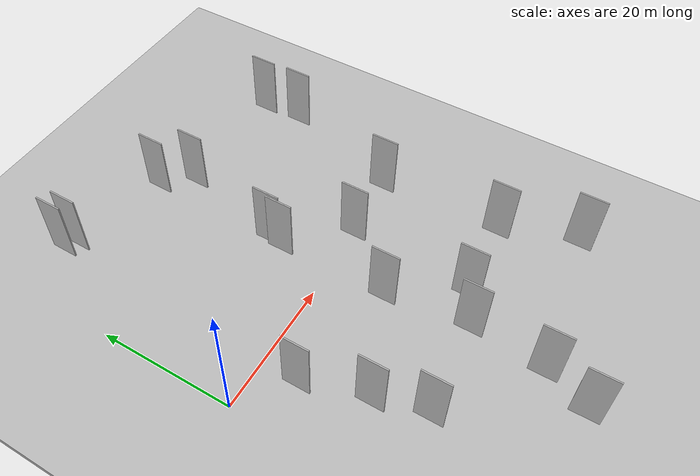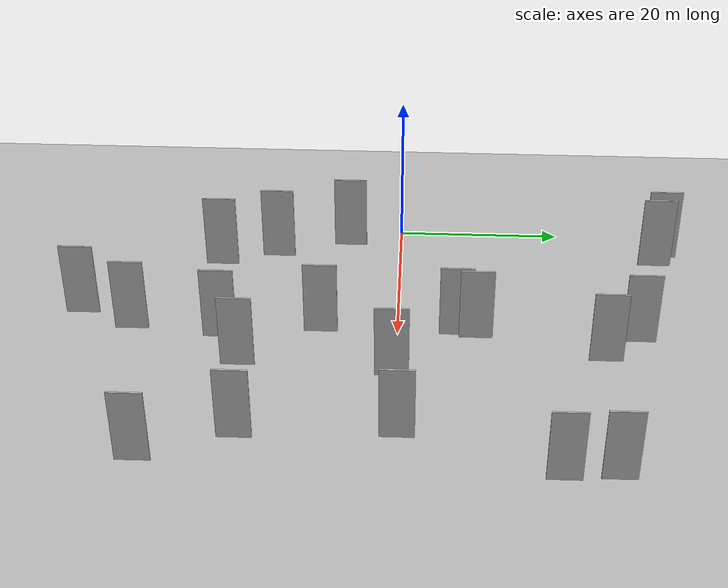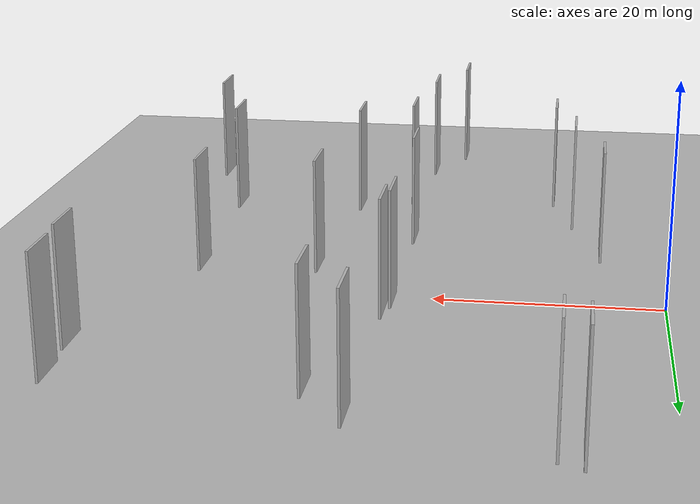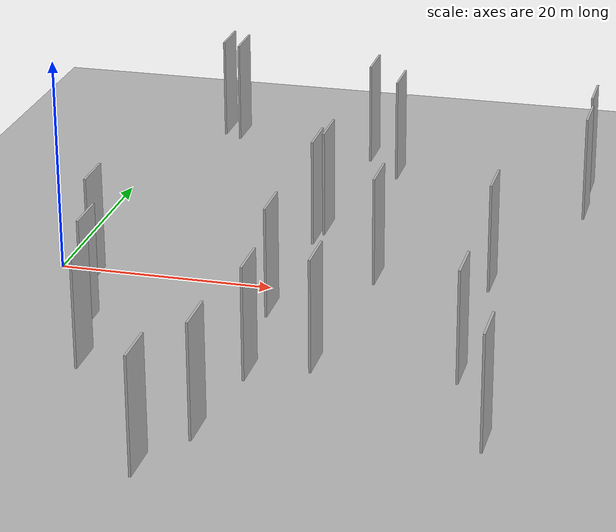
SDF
<?xml version="1.0" encoding="utf-8"?>

<sdf version="1.6">

   <world name="default">

      <gui fullscreen="0">

         <camera name="user_camera">

            <pose>-15 0 4.57585 0 0 0</pose>

            <view_controller>orbit</view_controller>

         </camera>

      </gui>

      <scene>

         <sky>

           <clouds>

             <speed>12</speed>

           </clouds>

         </sky>

         <ambient>0.4 0.4 0.4 1</ambient>

         <background>0.7 0.7 0.7 1</background>

         <shadows>1</shadows>

      </scene>

      <gravity>0 0 -9.8066</gravity>

      <magnetic_field>6e-06 2.3e-05 -4.2e-05</magnetic_field>

      <physics default="0" name="default_physics" type="ode">

         <ode>

            <solver>

               <type>quick</type>

               <iters>10</iters>

               <sor>1.0</sor>

               <use_dynamic_moi_rescaling>0</use_dynamic_moi_rescaling>

            </solver>

            <constraints>

               <cfm>0</cfm>

               <erp>0.2</erp>

               <contact_max_correcting_vel>100</contact_max_correcting_vel>

               <contact_surface_layer>0.001</contact_surface_layer>

            </constraints>

         </ode>

         <max_step_size>0.004</max_step_size>

         <real_time_factor>1</real_time_factor>

         <real_time_update_rate>250</real_time_update_rate>

      </physics>

      <light name="sun" type="directional">

         <cast_shadows>1</cast_shadows>

         <pose>0 0 10 0 0 0</pose>

         <diffuse>0.8 0.8 0.8 1</diffuse>

         <specular>0.2 0.2 0.2 1</specular>

         <attenuation>

            <range>1000</range>

            <constant>0.9</constant>

            <linear>0.01</linear>

            <quadratic>0.001</quadratic>

         </attenuation>

         <direction>-0.5 0.1 -0.9</direction>

      </light>

      <include>

         <name>ground_plane_1</name>

         <uri>model://HANNAS_ground_plane</uri>

         <pose>0 0 0  0 0 0</pose>

      </include>

      <include>

         <name>ground_plane_2</name>

         <uri>model://HANNAS_ground_plane</uri>

         <pose>100 0 0  0 0 0</pose>

      </include>

      <model name="HANNAS_wall_1">

         <static>1</static>

         <pose frame="">22.5808 -9.1110 2.5 0.000000 0.000000 1.570796</pose>

         <link name="link">

            <pose frame="">0 0 5.00 0 0 0</pose>

            <collision name="collision">

               <geometry>

                  <box>

                     <size>4.00 0.2 10.00</size>

                  </box>

               </geometry>

               <max_contacts>10</max_contacts>

               <surface>

                  <contact>

                     <ode/>

                  </contact>

                  <bounce/>

                  <friction>

                     <torsional>

                        <ode/>

                     </torsional>

                     <ode/>

                  </friction>

               </surface>

            </collision>

            <visual name="visual">

               <cast_shadows>0</cast_shadows>

               <geometry>

                  <box>

                     <size>4.00 0.2 10.00</size>

                  </box>

               </geometry>

               <material>

                  <script>

                     <uri>model://HANNAS_wall/materials/scripts</uri>

                     <uri>model://HANNAS_wall/materials/textures</uri>

                     <name>vrc/HANNAS_wall</name>

                  </script>

               </material>

            </visual>

            <self_collide>0</self_collide>

            <enable_wind>0</enable_wind>

            <kinematic>0</kinematic>

         </link>

      </model>

      <model name="HANNAS_wall_2">

         <static>1</static>

         <pose frame="">5.6764 -6.3411 2.5 0.000000 0.000000 1.570796</pose>

         <link name="link">

            <pose frame="">0 0 5.00 0 0 0</pose>

            <collision name="collision">

               <geometry>

                  <box>

                     <size>4.00 0.2 10.00</size>

                  </box>

               </geometry>

               <max_contacts>10</max_contacts>

               <surface>

                  <contact>

                     <ode/>

                  </contact>

                  <bounce/>

                  <friction>

                     <torsional>

                        <ode/>

                     </torsional>

                     <ode/>

                  </friction>

               </surface>

            </collision>

            <visual name="visual">

               <cast_shadows>0</cast_shadows>

               <geometry>

                  <box>

                     <size>4.00 0.2 10.00</size>

                  </box>

               </geometry>

               <material>

                  <script>

                     <uri>model://HANNAS_wall/materials/scripts</uri>

                     <uri>model://HANNAS_wall/materials/textures</uri>

                     <name>vrc/HANNAS_wall</name>

                  </script>

               </material>

            </visual>

            <self_collide>0</self_collide>

            <enable_wind>0</enable_wind>

            <kinematic>0</kinematic>

         </link>

      </model>

      <model name="HANNAS_wall_3">

         <static>1</static>

         <pose frame="">45.6201 24.6832 2.5 0.000000 0.000000 1.570796</pose>

         <link name="link">

            <pose frame="">0 0 5.00 0 0 0</pose>

            <collision name="collision">

               <geometry>

                  <box>

                     <size>4.00 0.2 10.00</size>

                  </box>

               </geometry>

               <max_contacts>10</max_contacts>

               <surface>

                  <contact>

                     <ode/>

                  </contact>

                  <bounce/>

                  <friction>

                     <torsional>

                        <ode/>

                     </torsional>

                     <ode/>

                  </friction>

               </surface>

            </collision>

            <visual name="visual">

               <cast_shadows>0</cast_shadows>

               <geometry>

                  <box>

                     <size>4.00 0.2 10.00</size>

                  </box>

               </geometry>

               <material>

                  <script>

                     <uri>model://HANNAS_wall/materials/scripts</uri>

                     <uri>model://HANNAS_wall/materials/textures</uri>

                     <name>vrc/HANNAS_wall</name>

                  </script>

               </material>

            </visual>

            <self_collide>0</self_collide>

            <enable_wind>0</enable_wind>

            <kinematic>0</kinematic>

         </link>

      </model>

      <model name="HANNAS_wall_4">

         <static>1</static>

         <pose frame="">26.6358 24.5391 2.5 0.000000 0.000000 1.570796</pose>

         <link name="link">

            <pose frame="">0 0 5.00 0 0 0</pose>

            <collision name="collision">

               <geometry>

                  <box>

                     <size>4.00 0.2 10.00</size>

                  </box>

               </geometry>

               <max_contacts>10</max_contacts>

               <surface>

                  <contact>

                     <ode/>

                  </contact>

                  <bounce/>

                  <friction>

                     <torsional>

                        <ode/>

                     </torsional>

                     <ode/>

                  </friction>

               </surface>

            </collision>

            <visual name="visual">

               <cast_shadows>0</cast_shadows>

               <geometry>

                  <box>

                     <size>4.00 0.2 10.00</size>

                  </box>

               </geometry>

               <material>

                  <script>

                     <uri>model://HANNAS_wall/materials/scripts</uri>

                     <uri>model://HANNAS_wall/materials/textures</uri>

                     <name>vrc/HANNAS_wall</name>

                  </script>

               </material>

            </visual>

            <self_collide>0</self_collide>

            <enable_wind>0</enable_wind>

            <kinematic>0</kinematic>

         </link>

      </model>

      <model name="HANNAS_wall_5">

         <static>1</static>

         <pose frame="">22.5919 6.9764 2.5 0.000000 0.000000 1.570796</pose>

         <link name="link">

            <pose frame="">0 0 5.00 0 0 0</pose>

            <collision name="collision">

               <geometry>

                  <box>

                     <size>4.00 0.2 10.00</size>

                  </box>

               </geometry>

               <max_contacts>10</max_contacts>

               <surface>

                  <contact>

                     <ode/>

                  </contact>

                  <bounce/>

                  <friction>

                     <torsional>

                        <ode/>

                     </torsional>

                     <ode/>

                  </friction>

               </surface>

            </collision>

            <visual name="visual">

               <cast_shadows>0</cast_shadows>

               <geometry>

                  <box>

                     <size>4.00 0.2 10.00</size>

                  </box>

               </geometry>

               <material>

                  <script>

                     <uri>model://HANNAS_wall/materials/scripts</uri>

                     <uri>model://HANNAS_wall/materials/textures</uri>

                     <name>vrc/HANNAS_wall</name>

                  </script>

               </material>

            </visual>

            <self_collide>0</self_collide>

            <enable_wind>0</enable_wind>

            <kinematic>0</kinematic>

         </link>

      </model>

      <model name="HANNAS_wall_6">

         <static>1</static>

         <pose frame="">45.9478 18.6932 2.5 0.000000 0.000000 1.570796</pose>

         <link name="link">

            <pose frame="">0 0 5.00 0 0 0</pose>

            <collision name="collision">

               <geometry>

                  <box>

                     <size>4.00 0.2 10.00</size>

                  </box>

               </geometry>

               <max_contacts>10</max_contacts>

               <surface>

                  <contact>

                     <ode/>

                  </contact>

                  <bounce/>

                  <friction>

                     <torsional>

                        <ode/>

                     </torsional>

                     <ode/>

                  </friction>

               </surface>

            </collision>

            <visual name="visual">

               <cast_shadows>0</cast_shadows>

               <geometry>

                  <box>

                     <size>4.00 0.2 10.00</size>

                  </box>

               </geometry>

               <material>

                  <script>

                     <uri>model://HANNAS_wall/materials/scripts</uri>

                     <uri>model://HANNAS_wall/materials/textures</uri>

                     <name>vrc/HANNAS_wall</name>

                  </script>

               </material>

            </visual>

            <self_collide>0</self_collide>

            <enable_wind>0</enable_wind>

            <kinematic>0</kinematic>

         </link>

      </model>

      <model name="HANNAS_wall_7">

         <static>1</static>

         <pose frame="">23.0688 9.3135 2.5 0.000000 0.000000 1.570796</pose>

         <link name="link">

            <pose frame="">0 0 5.00 0 0 0</pose>

            <collision name="collision">

               <geometry>

                  <box>

                     <size>4.00 0.2 10.00</size>

                  </box>

               </geometry>

               <max_contacts>10</max_contacts>

               <surface>

                  <contact>

                     <ode/>

                  </contact>

                  <bounce/>

                  <friction>

                     <torsional>

                        <ode/>

                     </torsional>

                     <ode/>

                  </friction>

               </surface>

            </collision>

            <visual name="visual">

               <cast_shadows>0</cast_shadows>

               <geometry>

                  <box>

                     <size>4.00 0.2 10.00</size>

                  </box>

               </geometry>

               <material>

                  <script>

                     <uri>model://HANNAS_wall/materials/scripts</uri>

                     <uri>model://HANNAS_wall/materials/textures</uri>

                     <name>vrc/HANNAS_wall</name>

                  </script>

               </material>

            </visual>

            <self_collide>0</self_collide>

            <enable_wind>0</enable_wind>

            <kinematic>0</kinematic>

         </link>

      </model>

      <model name="HANNAS_wall_8">

         <static>1</static>

         <pose frame="">8.5506 31.7400 2.5 0.000000 0.000000 1.570796</pose>

         <link name="link">

            <pose frame="">0 0 5.00 0 0 0</pose>

            <collision name="collision">

               <geometry>

                  <box>

                     <size>4.00 0.2 10.00</size>

                  </box>

               </geometry>

               <max_contacts>10</max_contacts>

               <surface>

                  <contact>

                     <ode/>

                  </contact>

                  <bounce/>

                  <friction>

                     <torsional>

                        <ode/>

                     </torsional>

                     <ode/>

                  </friction>

               </surface>

            </collision>

            <visual name="visual">

               <cast_shadows>0</cast_shadows>

               <geometry>

                  <box>

                     <size>4.00 0.2 10.00</size>

                  </box>

               </geometry>

               <material>

                  <script>

                     <uri>model://HANNAS_wall/materials/scripts</uri>

                     <uri>model://HANNAS_wall/materials/textures</uri>

                     <name>vrc/HANNAS_wall</name>

                  </script>

               </material>

            </visual>

            <self_collide>0</self_collide>

            <enable_wind>0</enable_wind>

            <kinematic>0</kinematic>

         </link>

      </model>

      <model name="HANNAS_wall_9">

         <static>1</static>

         <pose frame="">10.1609 -22.2072 2.5 0.000000 0.000000 1.570796</pose>

         <link name="link">

            <pose frame="">0 0 5.00 0 0 0</pose>

            <collision name="collision">

               <geometry>

                  <box>

                     <size>4.00 0.2 10.00</size>

                  </box>

               </geometry>

               <max_contacts>10</max_contacts>

               <surface>

                  <contact>

                     <ode/>

                  </contact>

                  <bounce/>

                  <friction>

                     <torsional>

                        <ode/>

                     </torsional>

                     <ode/>

                  </friction>

               </surface>

            </collision>

            <visual name="visual">

               <cast_shadows>0</cast_shadows>

               <geometry>

                  <box>

                     <size>4.00 0.2 10.00</size>

                  </box>

               </geometry>

               <material>

                  <script>

                     <uri>model://HANNAS_wall/materials/scripts</uri>

                     <uri>model://HANNAS_wall/materials/textures</uri>

                     <name>vrc/HANNAS_wall</name>

                  </script>

               </material>

            </visual>

            <self_collide>0</self_collide>

            <enable_wind>0</enable_wind>

            <kinematic>0</kinematic>

         </link>

      </model>

      <model name="HANNAS_wall_10">

         <static>1</static>

         <pose frame="">30.0182 -0.4615 2.5 0.000000 0.000000 1.570796</pose>

         <link name="link">

            <pose frame="">0 0 5.00 0 0 0</pose>

            <collision name="collision">

               <geometry>

                  <box>

                     <size>4.00 0.2 10.00</size>

                  </box>

               </geometry>

               <max_contacts>10</max_contacts>

               <surface>

                  <contact>

                     <ode/>

                  </contact>

                  <bounce/>

                  <friction>

                     <torsional>

                        <ode/>

                     </torsional>

                     <ode/>

                  </friction>

               </surface>

            </collision>

            <visual name="visual">

               <cast_shadows>0</cast_shadows>

               <geometry>

                  <box>

                     <size>4.00 0.2 10.00</size>

                  </box>

               </geometry>

               <material>

                  <script>

                     <uri>model://HANNAS_wall/materials/scripts</uri>

                     <uri>model://HANNAS_wall/materials/textures</uri>

                     <name>vrc/HANNAS_wall</name>

                  </script>

               </material>

            </visual>

            <self_collide>0</self_collide>

            <enable_wind>0</enable_wind>

            <kinematic>0</kinematic>

         </link>

      </model>

      <model name="HANNAS_wall_11">

         <static>1</static>

         <pose frame="">22.8264 -31.7088 2.5 0.000000 0.000000 1.570796</pose>

         <link name="link">

            <pose frame="">0 0 5.00 0 0 0</pose>

            <collision name="collision">

               <geometry>

                  <box>

                     <size>4.00 0.2 10.00</size>

                  </box>

               </geometry>

               <max_contacts>10</max_contacts>

               <surface>

                  <contact>

                     <ode/>

                  </contact>

                  <bounce/>

                  <friction>

                     <torsional>

                        <ode/>

                     </torsional>

                     <ode/>

                  </friction>

               </surface>

            </collision>

            <visual name="visual">

               <cast_shadows>0</cast_shadows>

               <geometry>

                  <box>

                     <size>4.00 0.2 10.00</size>

                  </box>

               </geometry>

               <material>

                  <script>

                     <uri>model://HANNAS_wall/materials/scripts</uri>

                     <uri>model://HANNAS_wall/materials/textures</uri>

                     <name>vrc/HANNAS_wall</name>

                  </script>

               </material>

            </visual>

            <self_collide>0</self_collide>

            <enable_wind>0</enable_wind>

            <kinematic>0</kinematic>

         </link>

      </model>

      <model name="HANNAS_wall_12">

         <static>1</static>

         <pose frame="">6.7875 32.5967 2.5 0.000000 0.000000 1.570796</pose>

         <link name="link">

            <pose frame="">0 0 5.00 0 0 0</pose>

            <collision name="collision">

               <geometry>

                  <box>

                     <size>4.00 0.2 10.00</size>

                  </box>

               </geometry>

               <max_contacts>10</max_contacts>

               <surface>

                  <contact>

                     <ode/>

                  </contact>

                  <bounce/>

                  <friction>

                     <torsional>

                        <ode/>

                     </torsional>

                     <ode/>

                  </friction>

               </surface>

            </collision>

            <visual name="visual">

               <cast_shadows>0</cast_shadows>

               <geometry>

                  <box>

                     <size>4.00 0.2 10.00</size>

                  </box>

               </geometry>

               <material>

                  <script>

                     <uri>model://HANNAS_wall/materials/scripts</uri>

                     <uri>model://HANNAS_wall/materials/textures</uri>

                     <name>vrc/HANNAS_wall</name>

                  </script>

               </material>

            </visual>

            <self_collide>0</self_collide>

            <enable_wind>0</enable_wind>

            <kinematic>0</kinematic>

         </link>

      </model>

      <model name="HANNAS_wall_13">

         <static>1</static>

         <pose frame="">20.1385 -38.0439 2.5 0.000000 0.000000 1.570796</pose>

         <link name="link">

            <pose frame="">0 0 5.00 0 0 0</pose>

            <collision name="collision">

               <geometry>

                  <box>

                     <size>4.00 0.2 10.00</size>

                  </box>

               </geometry>

               <max_contacts>10</max_contacts>

               <surface>

                  <contact>

                     <ode/>

                  </contact>

                  <bounce/>

                  <friction>

                     <torsional>

                        <ode/>

                     </torsional>

                     <ode/>

                  </friction>

               </surface>

            </collision>

            <visual name="visual">

               <cast_shadows>0</cast_shadows>

               <geometry>

                  <box>

                     <size>4.00 0.2 10.00</size>

                  </box>

               </geometry>

               <material>

                  <script>

                     <uri>model://HANNAS_wall/materials/scripts</uri>

                     <uri>model://HANNAS_wall/materials/textures</uri>

                     <name>vrc/HANNAS_wall</name>

                  </script>

               </material>

            </visual>

            <self_collide>0</self_collide>

            <enable_wind>0</enable_wind>

            <kinematic>0</kinematic>

         </link>

      </model>

      <model name="HANNAS_wall_14">

         <static>1</static>

         <pose frame="">23.0761 28.6633 2.5 0.000000 0.000000 1.570796</pose>

         <link name="link">

            <pose frame="">0 0 5.00 0 0 0</pose>

            <collision name="collision">

               <geometry>

                  <box>

                     <size>4.00 0.2 10.00</size>

                  </box>

               </geometry>

               <max_contacts>10</max_contacts>

               <surface>

                  <contact>

                     <ode/>

                  </contact>

                  <bounce/>

                  <friction>

                     <torsional>

                        <ode/>

                     </torsional>

                     <ode/>

                  </friction>

               </surface>

            </collision>

            <visual name="visual">

               <cast_shadows>0</cast_shadows>

               <geometry>

                  <box>

                     <size>4.00 0.2 10.00</size>

                  </box>

               </geometry>

               <material>

                  <script>

                     <uri>model://HANNAS_wall/materials/scripts</uri>

                     <uri>model://HANNAS_wall/materials/textures</uri>

                     <name>vrc/HANNAS_wall</name>

                  </script>

               </material>

            </visual>

            <self_collide>0</self_collide>

            <enable_wind>0</enable_wind>

            <kinematic>0</kinematic>

         </link>

      </model>

      <model name="HANNAS_wall_15">

         <static>1</static>

         <pose frame="">40.1334 0.4365 2.5 0.000000 0.000000 1.570796</pose>

         <link name="link">

            <pose frame="">0 0 5.00 0 0 0</pose>

            <collision name="collision">

               <geometry>

                  <box>

                     <size>4.00 0.2 10.00</size>

                  </box>

               </geometry>

               <max_contacts>10</max_contacts>

               <surface>

                  <contact>

                     <ode/>

                  </contact>

                  <bounce/>

                  <friction>

                     <torsional>

                        <ode/>

                     </torsional>

                     <ode/>

                  </friction>

               </surface>

            </collision>

            <visual name="visual">

               <cast_shadows>0</cast_shadows>

               <geometry>

                  <box>

                     <size>4.00 0.2 10.00</size>

                  </box>

               </geometry>

               <material>

                  <script>

                     <uri>model://HANNAS_wall/materials/scripts</uri>

                     <uri>model://HANNAS_wall/materials/textures</uri>

                     <name>vrc/HANNAS_wall</name>

                  </script>

               </material>

            </visual>

            <self_collide>0</self_collide>

            <enable_wind>0</enable_wind>

            <kinematic>0</kinematic>

         </link>

      </model>

      <model name="HANNAS_wall_16">

         <static>1</static>

         <pose frame="">23.9790 -21.0546 2.5 0.000000 0.000000 1.570796</pose>

         <link name="link">

            <pose frame="">0 0 5.00 0 0 0</pose>

            <collision name="collision">

               <geometry>

                  <box>

                     <size>4.00 0.2 10.00</size>

                  </box>

               </geometry>

               <max_contacts>10</max_contacts>

               <surface>

                  <contact>

                     <ode/>

                  </contact>

                  <bounce/>

                  <friction>

                     <torsional>

                        <ode/>

                     </torsional>

                     <ode/>

                  </friction>

               </surface>

            </collision>

            <visual name="visual">

               <cast_shadows>0</cast_shadows>

               <geometry>

                  <box>

                     <size>4.00 0.2 10.00</size>

                  </box>

               </geometry>

               <material>

                  <script>

                     <uri>model://HANNAS_wall/materials/scripts</uri>

                     <uri>model://HANNAS_wall/materials/textures</uri>

                     <name>vrc/HANNAS_wall</name>

                  </script>

               </material>

            </visual>

            <self_collide>0</self_collide>

            <enable_wind>0</enable_wind>

            <kinematic>0</kinematic>

         </link>

      </model>

      <model name="HANNAS_wall_17">

         <static>1</static>

         <pose frame="">44.7322 -28.3166 2.5 0.000000 0.000000 1.570796</pose>

         <link name="link">

            <pose frame="">0 0 5.00 0 0 0</pose>

            <collision name="collision">

               <geometry>

                  <box>

                     <size>4.00 0.2 10.00</size>

                  </box>

               </geometry>

               <max_contacts>10</max_contacts>

               <surface>

                  <contact>

                     <ode/>

                  </contact>

                  <bounce/>

                  <friction>

                     <torsional>

                        <ode/>

                     </torsional>

                     <ode/>

                  </friction>

               </surface>

            </collision>

            <visual name="visual">

               <cast_shadows>0</cast_shadows>

               <geometry>

                  <box>

                     <size>4.00 0.2 10.00</size>

                  </box>

               </geometry>

               <material>

                  <script>

                     <uri>model://HANNAS_wall/materials/scripts</uri>

                     <uri>model://HANNAS_wall/materials/textures</uri>

                     <name>vrc/HANNAS_wall</name>

                  </script>

               </material>

            </visual>

            <self_collide>0</self_collide>

            <enable_wind>0</enable_wind>

            <kinematic>0</kinematic>

         </link>

      </model>

      <model name="HANNAS_wall_18">

         <static>1</static>

         <pose frame="">8.2341 -15.2511 2.5 0.000000 0.000000 1.570796</pose>

         <link name="link">

            <pose frame="">0 0 5.00 0 0 0</pose>

            <collision name="collision">

               <geometry>

                  <box>

                     <size>4.00 0.2 10.00</size>

                  </box>

               </geometry>

               <max_contacts>10</max_contacts>

               <surface>

                  <contact>

                     <ode/>

                  </contact>

                  <bounce/>

                  <friction>

                     <torsional>

                        <ode/>

                     </torsional>

                     <ode/>

                  </friction>

               </surface>

            </collision>

            <visual name="visual">

               <cast_shadows>0</cast_shadows>

               <geometry>

                  <box>

                     <size>4.00 0.2 10.00</size>

                  </box>

               </geometry>

               <material>

                  <script>

                     <uri>model://HANNAS_wall/materials/scripts</uri>

                     <uri>model://HANNAS_wall/materials/textures</uri>

                     <name>vrc/HANNAS_wall</name>

                  </script>

               </material>

            </visual>

            <self_collide>0</self_collide>

            <enable_wind>0</enable_wind>

            <kinematic>0</kinematic>

         </link>

      </model>

      <model name="HANNAS_wall_19">

         <static>1</static>

         <pose frame="">40.8248 -17.6031 2.5 0.000000 0.000000 1.570796</pose>

         <link name="link">

            <pose frame="">0 0 5.00 0 0 0</pose>

            <collision name="collision">

               <geometry>

                  <box>

                     <size>4.00 0.2 10.00</size>

                  </box>

               </geometry>

               <max_contacts>10</max_contacts>

               <surface>

                  <contact>

                     <ode/>

                  </contact>

                  <bounce/>

                  <friction>

                     <torsional>

                        <ode/>

                     </torsional>

                     <ode/>

                  </friction>

               </surface>

            </collision>

            <visual name="visual">

               <cast_shadows>0</cast_shadows>

               <geometry>

                  <box>

                     <size>4.00 0.2 10.00</size>

                  </box>

               </geometry>

               <material>

                  <script>

                     <uri>model://HANNAS_wall/materials/scripts</uri>

                     <uri>model://HANNAS_wall/materials/textures</uri>

                     <name>vrc/HANNAS_wall</name>

                  </script>

               </material>

            </visual>

            <self_collide>0</self_collide>

            <enable_wind>0</enable_wind>

            <kinematic>0</kinematic>

         </link>

      </model>

      <model name="HANNAS_wall_20">

         <static>1</static>

         <pose frame="">28.8561 -18.4506 2.5 0.000000 0.000000 1.570796</pose>

         <link name="link">

            <pose frame="">0 0 5.00 0 0 0</pose>

            <collision name="collision">

               <geometry>

                  <box>

                     <size>4.00 0.2 10.00</size>

                  </box>

               </geometry>

               <max_contacts>10</max_contacts>

               <surface>

                  <contact>

                     <ode/>

                  </contact>

                  <bounce/>

                  <friction>

                     <torsional>

                        <ode/>

                     </torsional>

                     <ode/>

                  </friction>

               </surface>

            </collision>

            <visual name="visual">

               <cast_shadows>0</cast_shadows>

               <geometry>

                  <box>

                     <size>4.00 0.2 10.00</size>

                  </box>

               </geometry>

               <material>

                  <script>

                     <uri>model://HANNAS_wall/materials/scripts</uri>

                     <uri>model://HANNAS_wall/materials/textures</uri>

                     <name>vrc/HANNAS_wall</name>

                  </script>

               </material>

            </visual>

            <self_collide>0</self_collide>

            <enable_wind>0</enable_wind>

            <kinematic>0</kinematic>

         </link>

      </model>

   </world>

</sdf>

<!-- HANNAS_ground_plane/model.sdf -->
<sdf version="1.4">
<model name="HANNAS_ground_plane">
  <static>true</static>
    <link name="link">
      <collision name="collision">
        <geometry>
          <plane>
            <normal>0 0 1</normal>
            <size>1000 1000</size>
          </plane>
        </geometry>
        <surface>
          <friction>
            <ode>
              <mu>100</mu>
              <mu2>50</mu2>
            </ode>
          </friction>
        </surface>
      </collision>
      <visual name="visual">
        <cast_shadows>false</cast_shadows>
        <geometry>
          <plane>
            <normal>0 0 1</normal>
            <size>1000 1000</size>
          </plane>
        </geometry>
        <material>
          <script>
            <uri>model://HANNAS_ground_plane/materials/scripts/HANNAS_ground_plane.material</uri>
	    <uri>model://HANNAS_ground_plane/materials/textures</uri>
            <name>HANNASGroundPlane/Image</name>
          </script>
        </material>
      </visual>
    </link>
  </model>
</sdf>
